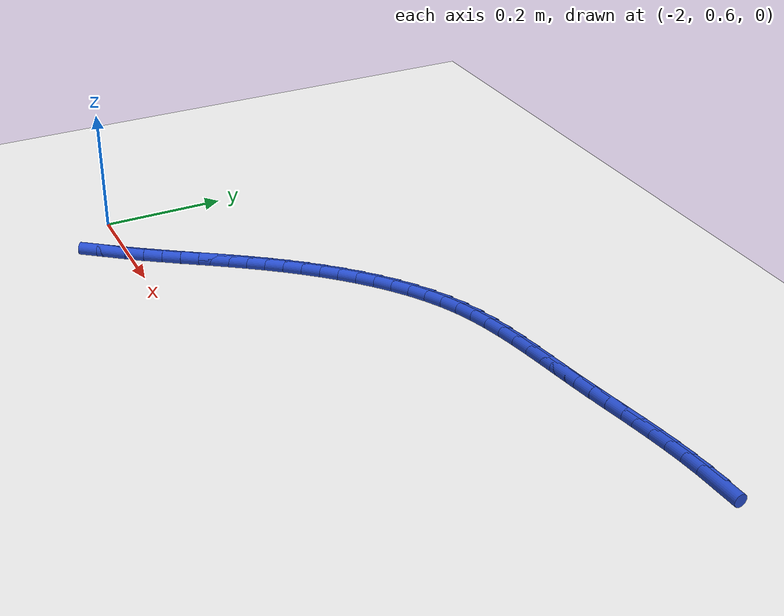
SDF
<sdf version="1.6">
 <world name="default">
  <model name="ground_plane">
   <static>1</static>
   <link name="link">
    <collision name="collision">
     <geometry><plane><normal>0 0 1</normal><size>100 100</size></plane></geometry>
     <surface><friction><ode><mu>100</mu><mu2>50</mu2></ode></friction></surface>
    </collision>
    <visual name="visual">
     <cast_shadows>0</cast_shadows>
     <geometry><plane><normal>0 0 1</normal><size>100 100</size></plane></geometry>
     <material>
      <script><uri>file://media/materials/scripts/gazebo.material</uri><name>Gazebo/WhiteGlow</name></script>
     </material>
    </visual>
   </link>
  </model>
  <model name="line">
   <link name="link_53">
    <pose>-0.9870229140947362 1.0808440603312157 0.01 0 1.57 0.039003583011314756</pose>
    <collision name="collision">
     <geometry><cylinder><radius>0.01</radius><length>0.08</length></cylinder></geometry>
    </collision>
    <visual name="visual">
     <material>
      <script><name>Gazebo/Blue</name><uri>file://media/materials/scripts/gazebo.material</uri></script>
     </material>
     <geometry><cylinder><radius>0.01</radius><length>0.08</length></cylinder></geometry>
    </visual>
   </link>
   <link name="link_54">
    <pose>-1.0168680349902326 1.0796794030312264 0.01 0 1.57 0.07812813988375267</pose>
    <collision name="collision">
     <geometry><cylinder><radius>0.01</radius><length>0.08</length></cylinder></geometry>
    </collision>
    <visual name="visual">
     <material>
      <script><name>Gazebo/Blue</name><uri>file://media/materials/scripts/gazebo.material</uri></script>
     </material>
     <geometry><cylinder><radius>0.01</radius><length>0.08</length></cylinder></geometry>
    </visual>
   </link>
   <link name="link_55">
    <pose>-1.0466072578297188 1.0773511938058198 0.01 0 1.57 0.11044944147505356</pose>
    <collision name="collision">
     <geometry><cylinder><radius>0.01</radius><length>0.08</length></cylinder></geometry>
    </collision>
    <visual name="visual">
     <material>
      <script><name>Gazebo/Blue</name><uri>file://media/materials/scripts/gazebo.material</uri></script>
     </material>
     <geometry><cylinder><radius>0.01</radius><length>0.08</length></cylinder></geometry>
    </visual>
   </link>
   <link name="link_56">
    <pose>-1.0762737953448058 1.0740611519200096 0.01 0 1.57 0.13586241205830019</pose>
    <collision name="collision">
     <geometry><cylinder><radius>0.01</radius><length>0.08</length></cylinder></geometry>
    </collision>
    <visual name="visual">
     <material>
      <script><name>Gazebo/Blue</name><uri>file://media/materials/scripts/gazebo.material</uri></script>
     </material>
     <geometry><cylinder><radius>0.01</radius><length>0.08</length></cylinder></geometry>
    </visual>
   </link>
   <link name="link_57">
    <pose>-1.1059008602671065 1.0700109966388092 0.01 0 1.57 0.15434740777895228</pose>
    <collision name="collision">
     <geometry><cylinder><radius>0.01</radius><length>0.08</length></cylinder></geometry>
    </collision>
    <visual name="visual">
     <material>
      <script><name>Gazebo/Blue</name><uri>file://media/materials/scripts/gazebo.material</uri></script>
     </material>
     <geometry><cylinder><radius>0.01</radius><length>0.08</length></cylinder></geometry>
    </visual>
   </link>
   <link name="link_58">
    <pose>-1.135521665328232 1.0654024472272323 0.01 0 1.57 0.1659339457174354</pose>
    <collision name="collision">
     <geometry><cylinder><radius>0.01</radius><length>0.08</length></cylinder></geometry>
    </collision>
    <visual name="visual">
     <material>
      <script><name>Gazebo/Blue</name><uri>file://media/materials/scripts/gazebo.material</uri></script>
     </material>
     <geometry><cylinder><radius>0.01</radius><length>0.08</length></cylinder></geometry>
    </visual>
   </link>
   <link name="link_59">
    <pose>-1.165169423259795 1.060437222950293 0.01 0 1.57 0.17067388880014298</pose>
    <collision name="collision">
     <geometry><cylinder><radius>0.01</radius><length>0.08</length></cylinder></geometry>
    </collision>
    <visual name="visual">
     <material>
      <script><name>Gazebo/Blue</name><uri>file://media/materials/scripts/gazebo.material</uri></script>
     </material>
     <geometry><cylinder><radius>0.01</radius><length>0.08</length></cylinder></geometry>
    </visual>
   </link>
   <link name="link_60">
    <pose>-1.194877346793406 1.0553170430730041 0.01 0 1.57 0.16862479535718097</pose>
    <collision name="collision">
     <geometry><cylinder><radius>0.01</radius><length>0.08</length></cylinder></geometry>
    </collision>
    <visual name="visual">
     <material>
      <script><name>Gazebo/Blue</name><uri>file://media/materials/scripts/gazebo.material</uri></script>
     </material>
     <geometry><cylinder><radius>0.01</radius><length>0.08</length></cylinder></geometry>
    </visual>
   </link>
   <link name="link_61">
    <pose>-1.2246786486606784 1.0502436268603799 0.01 0 1.57 0.1598436374152835</pose>
    <collision name="collision">
     <geometry><cylinder><radius>0.01</radius><length>0.08</length></cylinder></geometry>
    </collision>
    <visual name="visual">
     <material>
      <script><name>Gazebo/Blue</name><uri>file://media/materials/scripts/gazebo.material</uri></script>
     </material>
     <geometry><cylinder><radius>0.01</radius><length>0.08</length></cylinder></geometry>
    </visual>
   </link>
   <link name="link_62">
    <pose>-1.254606538009798 1.045418681569717 0.01 0 1.57 0.14772607011314776</pose>
    <collision name="collision">
     <geometry><cylinder><radius>0.01</radius><length>0.08</length></cylinder></geometry>
    </collision>
    <visual name="visual">
     <material>
      <script><name>Gazebo/Blue</name><uri>file://media/materials/scripts/gazebo.material</uri></script>
     </material>
     <geometry><cylinder><radius>0.01</radius><length>0.08</length></cylinder></geometry>
    </visual>
   </link>
   <link name="link_63">
    <pose>-1.2846649113978192 1.0409456907440309 0.01 0 1.57 0.1436783478197789</pose>
    <collision name="collision">
     <geometry><cylinder><radius>0.01</radius><length>0.08</length></cylinder></geometry>
    </collision>
    <visual name="visual">
     <material>
      <script><name>Gazebo/Blue</name><uri>file://media/materials/scripts/gazebo.material</uri></script>
     </material>
     <geometry><cylinder><radius>0.01</radius><length>0.08</length></cylinder></geometry>
    </visual>
   </link>
   <link name="link_64">
    <pose>-1.3147573697299255 1.0365920567041698 0.01 0 1.57 0.15010824287036018</pose>
    <collision name="collision">
     <geometry><cylinder><radius>0.01</radius><length>0.08</length></cylinder></geometry>
    </collision>
    <visual name="visual">
     <material>
      <script><name>Gazebo/Blue</name><uri>file://media/materials/scripts/gazebo.material</uri></script>
     </material>
     <geometry><cylinder><radius>0.01</radius><length>0.08</length></cylinder></geometry>
    </visual>
   </link>
   <link name="link_65">
    <pose>-1.3447660807107054 1.0320533611474891 0.01 0 1.57 0.16711701678033428</pose>
    <collision name="collision">
     <geometry><cylinder><radius>0.01</radius><length>0.08</length></cylinder></geometry>
    </collision>
    <visual name="visual">
     <material>
      <script><name>Gazebo/Blue</name><uri>file://media/materials/scripts/gazebo.material</uri></script>
     </material>
     <geometry><cylinder><radius>0.01</radius><length>0.08</length></cylinder></geometry>
    </visual>
   </link>
   <link name="link_66">
    <pose>-1.374573212044747 1.0270251857713428 0.01 0 1.57 0.19493340738143822</pose>
    <collision name="collision">
     <geometry><cylinder><radius>0.01</radius><length>0.08</length></cylinder></geometry>
    </collision>
    <visual name="visual">
     <material>
      <script><name>Gazebo/Blue</name><uri>file://media/materials/scripts/gazebo.material</uri></script>
     </material>
     <geometry><cylinder><radius>0.01</radius><length>0.08</length></cylinder></geometry>
    </visual>
   </link>
   <link name="link_67">
    <pose>-1.4040609314366386 1.0212031122730865 0.01 0 1.57 0.2338607814405703</pose>
    <collision name="collision">
     <geometry><cylinder><radius>0.01</radius><length>0.08</length></cylinder></geometry>
    </collision>
    <visual name="visual">
     <material>
      <script><name>Gazebo/Blue</name><uri>file://media/materials/scripts/gazebo.material</uri></script>
     </material>
     <geometry><cylinder><radius>0.01</radius><length>0.08</length></cylinder></geometry>
    </visual>
   </link>
   <link name="link_68">
    <pose>-1.433111406590969 1.0142827223500746 0.01 0 1.57 0.2841810939001059</pose>
    <collision name="collision">
     <geometry><cylinder><radius>0.01</radius><length>0.08</length></cylinder></geometry>
    </collision>
    <visual name="visual">
     <material>
      <script><name>Gazebo/Blue</name><uri>file://media/materials/scripts/gazebo.material</uri></script>
     </material>
     <geometry><cylinder><radius>0.01</radius><length>0.08</length></cylinder></geometry>
    </visual>
   </link>
   <link name="link_69">
    <pose>-1.4616068052123259 1.0059595976996625 0.01 0 1.57 0.3460067363156256</pose>
    <collision name="collision">
     <geometry><cylinder><radius>0.01</radius><length>0.08</length></cylinder></geometry>
    </collision>
    <visual name="visual">
     <material>
      <script><name>Gazebo/Blue</name><uri>file://media/materials/scripts/gazebo.material</uri></script>
     </material>
     <geometry><cylinder><radius>0.01</radius><length>0.08</length></cylinder></geometry>
    </visual>
   </link>
   <link name="link_70">
    <pose>-1.4894292950052985 0.9959293200192045 0.01 0 1.57 0.4182340303166367</pose>
    <collision name="collision">
     <geometry><cylinder><radius>0.01</radius><length>0.08</length></cylinder></geometry>
    </collision>
    <visual name="visual">
     <material>
      <script><name>Gazebo/Blue</name><uri>file://media/materials/scripts/gazebo.material</uri></script>
     </material>
     <geometry><cylinder><radius>0.01</radius><length>0.08</length></cylinder></geometry>
    </visual>
   </link>
   <link name="link_71">
    <pose>-1.5164669979196208 0.983912249071872 0.01 0 1.57 0.4907335295005106</pose>
    <collision name="collision">
     <geometry><cylinder><radius>0.01</radius><length>0.08</length></cylinder></geometry>
    </collision>
    <visual name="visual">
     <material>
      <script><name>Gazebo/Blue</name><uri>file://media/materials/scripts/gazebo.material</uri></script>
     </material>
     <geometry><cylinder><radius>0.01</radius><length>0.08</length></cylinder></geometry>
    </visual>
   </link>
   <link name="link_72">
    <pose>-1.5426752338772993 0.9699083830533397 0.01 0 1.57 0.5572904909467037</pose>
    <collision name="collision">
     <geometry><cylinder><radius>0.01</radius><length>0.08</length></cylinder></geometry>
    </collision>
    <visual name="visual">
     <material>
      <script><name>Gazebo/Blue</name><uri>file://media/materials/scripts/gazebo.material</uri></script>
     </material>
     <geometry><cylinder><radius>0.01</radius><length>0.08</length></cylinder></geometry>
    </visual>
   </link>
   <link name="link_73">
    <pose>-1.568051735982884 0.9540942188761956 0.01 0 1.57 0.6179351739986538</pose>
    <collision name="collision">
     <geometry><cylinder><radius>0.01</radius><length>0.08</length></cylinder></geometry>
    </collision>
    <visual name="visual">
     <material>
      <script><name>Gazebo/Blue</name><uri>file://media/materials/scripts/gazebo.material</uri></script>
     </material>
     <geometry><cylinder><radius>0.01</radius><length>0.08</length></cylinder></geometry>
    </visual>
   </link>
   <link name="link_74">
    <pose>-1.5925949031556852 0.9366490241823976 0.01 0 1.57 0.6729476169263701</pose>
    <collision name="collision">
     <geometry><cylinder><radius>0.01</radius><length>0.08</length></cylinder></geometry>
    </collision>
    <visual name="visual">
     <material>
      <script><name>Gazebo/Blue</name><uri>file://media/materials/scripts/gazebo.material</uri></script>
     </material>
     <geometry><cylinder><radius>0.01</radius><length>0.08</length></cylinder></geometry>
    </visual>
   </link>
   <link name="link_75">
    <pose>-1.6163031343150116 0.9177520666139047 0.01 0 1.57 0.722697715492305</pose>
    <collision name="collision">
     <geometry><cylinder><radius>0.01</radius><length>0.08</length></cylinder></geometry>
    </collision>
    <visual name="visual">
     <material>
      <script><name>Gazebo/Blue</name><uri>file://media/materials/scripts/gazebo.material</uri></script>
     </material>
     <geometry><cylinder><radius>0.01</radius><length>0.08</length></cylinder></geometry>
    </visual>
   </link>
   <link name="link_76">
    <pose>-1.6391748283801735 0.8975826138126752 0.01 0 1.57 0.7675953675321195</pose>
    <collision name="collision">
     <geometry><cylinder><radius>0.01</radius><length>0.08</length></cylinder></geometry>
    </collision>
    <visual name="visual">
     <material>
      <script><name>Gazebo/Blue</name><uri>file://media/materials/scripts/gazebo.material</uri></script>
     </material>
     <geometry><cylinder><radius>0.01</radius><length>0.08</length></cylinder></geometry>
    </visual>
   </link>
   <link name="link_77">
    <pose>-1.661208384270481 0.8763199334206684 0.01 0 1.57 0.8080554188407614</pose>
    <collision name="collision">
     <geometry><cylinder><radius>0.01</radius><length>0.08</length></cylinder></geometry>
    </collision>
    <visual name="visual">
     <material>
      <script><name>Gazebo/Blue</name><uri>file://media/materials/scripts/gazebo.material</uri></script>
     </material>
     <geometry><cylinder><radius>0.01</radius><length>0.08</length></cylinder></geometry>
    </visual>
   </link>
   <link name="link_78">
    <pose>-1.6824022009052444 0.8541432930798424 0.01 0 1.57 0.8444747652360617</pose>
    <collision name="collision">
     <geometry><cylinder><radius>0.01</radius><length>0.08</length></cylinder></geometry>
    </collision>
    <visual name="visual">
     <material>
      <script><name>Gazebo/Blue</name><uri>file://media/materials/scripts/gazebo.material</uri></script>
     </material>
     <geometry><cylinder><radius>0.01</radius><length>0.08</length></cylinder></geometry>
    </visual>
   </link>
   <link name="link_79">
    <pose>-1.7027546772037716 0.8312319604321562 0.01 0 1.57 0.87721844168977</pose>
    <collision name="collision">
     <geometry><cylinder><radius>0.01</radius><length>0.08</length></cylinder></geometry>
    </collision>
    <visual name="visual">
     <material>
      <script><name>Gazebo/Blue</name><uri>file://media/materials/scripts/gazebo.material</uri></script>
     </material>
     <geometry><cylinder><radius>0.01</radius><length>0.08</length></cylinder></geometry>
    </visual>
   </link>
   <link name="link_80">
    <pose>-1.7222642120853742 0.8077652031195677 0.01 0 1.57 0.9066101463321842</pose>
    <collision name="collision">
     <geometry><cylinder><radius>0.01</radius><length>0.08</length></cylinder></geometry>
    </collision>
    <visual name="visual">
     <material>
      <script><name>Gazebo/Blue</name><uri>file://media/materials/scripts/gazebo.material</uri></script>
     </material>
     <geometry><cylinder><radius>0.01</radius><length>0.08</length></cylinder></geometry>
    </visual>
   </link>
   <link name="link_81">
    <pose>-1.7409293390851568 0.7839221978528693 0.01 0 1.57 0.9321950477538616</pose>
    <collision name="collision">
     <geometry><cylinder><radius>0.01</radius><length>0.08</length></cylinder></geometry>
    </collision>
    <visual name="visual">
     <material>
      <script><name>Gazebo/Blue</name><uri>file://media/materials/scripts/gazebo.material</uri></script>
     </material>
     <geometry><cylinder><radius>0.01</radius><length>0.08</length></cylinder></geometry>
    </visual>
   </link>
   <link name="link_82">
    <pose>-1.7588036060606096 0.7598449599049348 0.01 0 1.57 0.9520445798185945</pose>
    <collision name="collision">
     <geometry><cylinder><radius>0.01</radius><length>0.08</length></cylinder></geometry>
    </collision>
    <visual name="visual">
     <material>
      <script><name>Gazebo/Blue</name><uri>file://media/materials/scripts/gazebo.material</uri></script>
     </material>
     <geometry><cylinder><radius>0.01</radius><length>0.08</length></cylinder></geometry>
    </visual>
   </link>
   <link name="link_83">
    <pose>-1.7760799184387348 0.7355813703769674 0.01 0 1.57 0.9655535357585275</pose>
    <collision name="collision">
     <geometry><cylinder><radius>0.01</radius><length>0.08</length></cylinder></geometry>
    </collision>
    <visual name="visual">
     <material>
      <script><name>Gazebo/Blue</name><uri>file://media/materials/scripts/gazebo.material</uri></script>
     </material>
     <geometry><cylinder><radius>0.01</radius><length>0.08</length></cylinder></geometry>
    </visual>
   </link>
   <link name="link_84">
    <pose>-1.7929729142200395 0.71116463030785 0.01 0 1.57 0.972523341493911</pose>
    <collision name="collision">
     <geometry><cylinder><radius>0.01</radius><length>0.08</length></cylinder></geometry>
    </collision>
    <visual name="visual">
     <material>
      <script><name>Gazebo/Blue</name><uri>file://media/materials/scripts/gazebo.material</uri></script>
     </material>
     <geometry><cylinder><radius>0.01</radius><length>0.08</length></cylinder></geometry>
    </visual>
   </link>
   <link name="link_85">
    <pose>-1.8096972314050328 0.6866279407364648 0.01 0 1.57 0.9728885904679772</pose>
    <collision name="collision">
     <geometry><cylinder><radius>0.01</radius><length>0.08</length></cylinder></geometry>
    </collision>
    <visual name="visual">
     <material>
      <script><name>Gazebo/Blue</name><uri>file://media/materials/scripts/gazebo.material</uri></script>
     </material>
     <geometry><cylinder><radius>0.01</radius><length>0.08</length></cylinder></geometry>
    </visual>
   </link>
   <link name="link_86">
    <pose>-1.8264675079942219 0.662004502701695 0.01 0 1.57 0.9667102960204816</pose>
    <collision name="collision">
     <geometry><cylinder><radius>0.01</radius><length>0.08</length></cylinder></geometry>
    </collision>
    <visual name="visual">
     <material>
      <script><name>Gazebo/Blue</name><uri>file://media/materials/scripts/gazebo.material</uri></script>
     </material>
     <geometry><cylinder><radius>0.01</radius><length>0.08</length></cylinder></geometry>
    </visual>
   </link>
   <link name="link_87">
    <pose>-1.8434983819881154 0.6373275172424226 0.01 0 1.57 0.9541714424767621</pose>
    <collision name="collision">
     <geometry><cylinder><radius>0.01</radius><length>0.08</length></cylinder></geometry>
    </collision>
    <visual name="visual">
     <material>
      <script><name>Gazebo/Blue</name><uri>file://media/materials/scripts/gazebo.material</uri></script>
     </material>
     <geometry><cylinder><radius>0.01</radius><length>0.08</length></cylinder></geometry>
    </visual>
   </link>
   <link name="link_88">
    <pose>-1.8610044913872208 0.6126301853975303 0.01 0 1.57 0.935593271071417</pose>
    <collision name="collision">
     <geometry><cylinder><radius>0.01</radius><length>0.08</length></cylinder></geometry>
    </collision>
    <visual name="visual">
     <material>
      <script><name>Gazebo/Blue</name><uri>file://media/materials/scripts/gazebo.material</uri></script>
     </material>
     <geometry><cylinder><radius>0.01</radius><length>0.08</length></cylinder></geometry>
    </visual>
   </link>
   <link name="link_89">
    <pose>-1.8791998461633614 0.587945604660771 0.01 0 1.57 0.9163313343535722</pose>
    <collision name="collision">
     <geometry><cylinder><radius>0.01</radius><length>0.08</length></cylinder></geometry>
    </collision>
    <visual name="visual">
     <material>
      <script><name>Gazebo/Blue</name><uri>file://media/materials/scripts/gazebo.material</uri></script>
     </material>
     <geometry><cylinder><radius>0.01</radius><length>0.08</length></cylinder></geometry>
    </visual>
   </link>
   <link name="link_90">
    <pose>-1.8981262805609707 0.5632784853543079 0.01 0 1.57 0.9078971553911593</pose>
    <collision name="collision">
     <geometry><cylinder><radius>0.01</radius><length>0.08</length></cylinder></geometry>
    </collision>
    <visual name="visual">
     <material>
      <script><name>Gazebo/Blue</name><uri>file://media/materials/scripts/gazebo.material</uri></script>
     </material>
     <geometry><cylinder><radius>0.01</radius><length>0.08</length></cylinder></geometry>
    </visual>
   </link>
  </model>
 </world>
</sdf>
